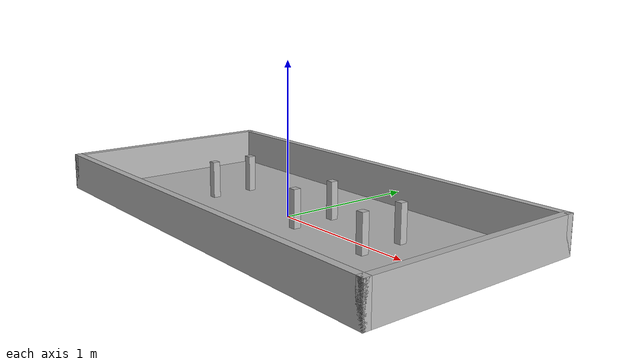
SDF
<?xml version="1.0" ?>
<sdf version="1.5">
  <model name="simulation_table_small">
    <static>true</static>
    <link name="floor">
      <collision name="collision">
        <geometry>
          <plane>
            <normal>0 0 1</normal>
            <size>3.0 1.5</size>
          </plane>
        </geometry>
        <surface>
          <friction>
            <ode>
              <mu>100</mu>
              <mu2>50</mu2>
            </ode>
          </friction>
        </surface>
      </collision>
      <visual name="visual">
        <cast_shadows>false</cast_shadows>
        <geometry>
          <plane>
            <normal>0 0 1</normal>
            <size>3.0 1.5</size>
          </plane>
        </geometry>
        <material>
          <script>
            <uri>model://simulation_table_small/materials/scripts/</uri>
            <uri>model://simulation_table_small/materials/textures/</uri>
            <name>SimulationTableSmall/Background</name>
          </script>
        </material>
      </visual>
    </link>
    <link name="side_1">
      <pose relative_to="floor">0.0 0.75 0.125 1.57079632679 0 0</pose>
      <collision name="collision">
        <geometry>
          <box>
            <size>3.05 0.25 0.05</size>
          </box>
        </geometry>
        <surface>
          <friction>
            <ode>
              <mu>100</mu>
              <mu2>50</mu2>
            </ode>
          </friction>
        </surface>
      </collision>
      <visual name="visual">
        <cast_shadows>false</cast_shadows>
        <geometry>
          <box>
            <size>3.05 0.25 0.05</size>
          </box>
        </geometry>
      </visual>
    </link>
    <link name="side_2">
      <pose relative_to="floor">0.0 -0.75 0.125 1.57079632679 0 0</pose>
      <collision name="collision">
        <geometry>
          <box>
            <size>3.05 0.25 0.05</size>
          </box>
        </geometry>
        <surface>
          <friction>
            <ode>
              <mu>100</mu>
              <mu2>50</mu2>
            </ode>
          </friction>
        </surface>
      </collision>
      <visual name="visual">
        <cast_shadows>false</cast_shadows>
        <geometry>
          <box>
            <size>3.05 0.25 0.05</size>
          </box>
        </geometry>
      </visual>
    </link>
    <link name="side_3">
      <pose relative_to="floor">1.5 0.0 0.125 1.57079632679 0 1.57079632679</pose>
      <collision name="collision">
        <geometry>
          <box>
            <size>1.55 0.25 0.05</size>
          </box>
        </geometry>
        <surface>
          <friction>
            <ode>
              <mu>100</mu>
              <mu2>50</mu2>
            </ode>
          </friction>
        </surface>
      </collision>
      <visual name="visual">
        <cast_shadows>false</cast_shadows>
        <geometry>
          <box>
            <size>1.55 0.25 0.05</size>
          </box>
        </geometry>
      </visual>
    </link>
    <link name="side_4">
      <pose relative_to="floor">-1.5 0.0 0.125 1.57079632679 0 1.57079632679</pose>
      <collision name="collision">
        <geometry>
          <box>
            <size>1.55 0.25 0.05</size>
          </box>
        </geometry>
        <surface>
          <friction>
            <ode>
              <mu>100</mu>
              <mu2>50</mu2>
            </ode>
          </friction>
        </surface>
      </collision>
      <visual name="visual">
        <cast_shadows>false</cast_shadows>
        <geometry>
          <box>
            <size>1.55 0.25 0.05</size>
          </box>
        </geometry>
      </visual>
    </link>
    <link name="obstacle_1">
      <pose relative_to="floor">-0.7 0.20 0.125 0 0 0</pose>
      <collision name="collision">
        <geometry>
          <box>
            <size>0.05 0.05 0.25</size>
          </box>
        </geometry>
        <surface>
          <friction>
            <ode>
              <mu>100</mu>
              <mu2>50</mu2>
            </ode>
          </friction>
        </surface>
      </collision>
      <visual name="visual">
        <cast_shadows>false</cast_shadows>
        <geometry>
          <box>
            <size>0.05 0.05 0.25</size>
          </box>
        </geometry>
      </visual>
    </link>
    <link name="obstacle_2">
      <pose relative_to="floor">0.2 0.20 0.125 0 0 0</pose>
      <collision name="collision">
        <geometry>
          <box>
            <size>0.05 0.05 0.25</size>
          </box>
        </geometry>
        <surface>
          <friction>
            <ode>
              <mu>100</mu>
              <mu2>50</mu2>
            </ode>
          </friction>
        </surface>
      </collision>
      <visual name="visual">
        <cast_shadows>false</cast_shadows>
        <geometry>
          <box>
            <size>0.05 0.05 0.25</size>
          </box>
        </geometry>
      </visual>
    </link>
    <link name="obstacle_3">
      <pose relative_to="floor">0.8 0.20 0.125 0 0 0</pose>
      <collision name="collision">
        <geometry>
          <box>
            <size>0.05 0.05 0.25</size>
          </box>
        </geometry>
        <surface>
          <friction>
            <ode>
              <mu>100</mu>
              <mu2>50</mu2>
            </ode>
          </friction>
        </surface>
      </collision>
      <visual name="visual">
        <cast_shadows>false</cast_shadows>
        <geometry>
          <box>
            <size>0.05 0.05 0.25</size>
          </box>
        </geometry>
      </visual>
    </link>
    <link name="obstacle_4">
      <pose relative_to="floor">-0.7 -0.10 0.125 0 0 0</pose>
      <collision name="collision">
        <geometry>
          <box>
            <size>0.05 0.05 0.25</size>
          </box>
        </geometry>
        <surface>
          <friction>
            <ode>
              <mu>100</mu>
              <mu2>50</mu2>
            </ode>
          </friction>
        </surface>
      </collision>
      <visual name="visual">
        <cast_shadows>false</cast_shadows>
        <geometry>
          <box>
            <size>0.05 0.05 0.25</size>
          </box>
        </geometry>
      </visual>
    </link>
    <link name="obstacle_5">
      <pose relative_to="floor">0.2 -0.10 0.125 0 0 0</pose>
      <collision name="collision">
        <geometry>
          <box>
            <size>0.05 0.05 0.25</size>
          </box>
        </geometry>
        <surface>
          <friction>
            <ode>
              <mu>100</mu>
              <mu2>50</mu2>
            </ode>
          </friction>
        </surface>
      </collision>
      <visual name="visual">
        <cast_shadows>false</cast_shadows>
        <geometry>
          <box>
            <size>0.05 0.05 0.25</size>
          </box>
        </geometry>
      </visual>
    </link>
    <link name="obstacle_6">
      <pose relative_to="floor">0.8 -0.10 0.125 0 0 0</pose>
      <collision name="collision">
        <geometry>
          <box>
            <size>0.05 0.05 0.25</size>
          </box>
        </geometry>
        <surface>
          <friction>
            <ode>
              <mu>100</mu>
              <mu2>50</mu2>
            </ode>
          </friction>
        </surface>
      </collision>
      <visual name="visual">
        <cast_shadows>false</cast_shadows>
        <geometry>
          <box>
            <size>0.05 0.05 0.25</size>
          </box>
        </geometry>
      </visual>
    </link>
  </model>
</sdf>
